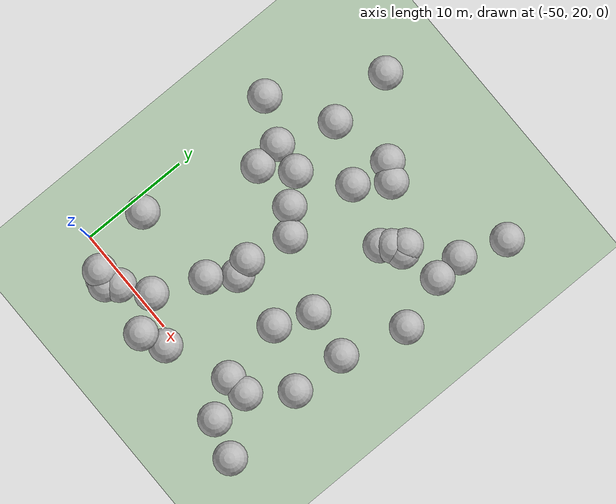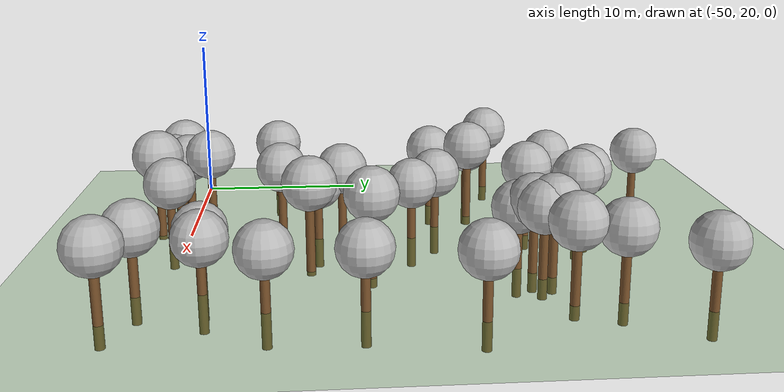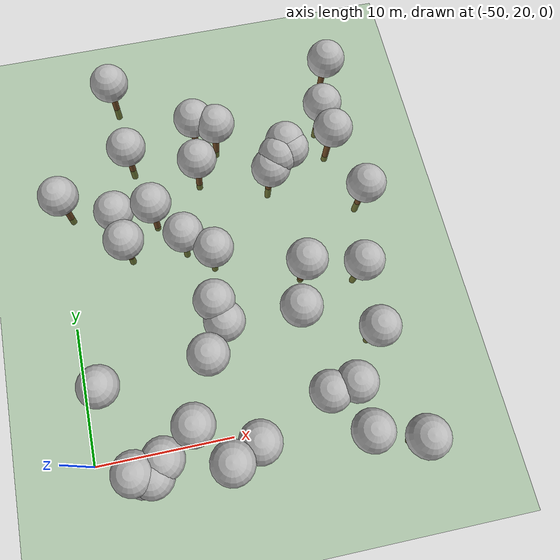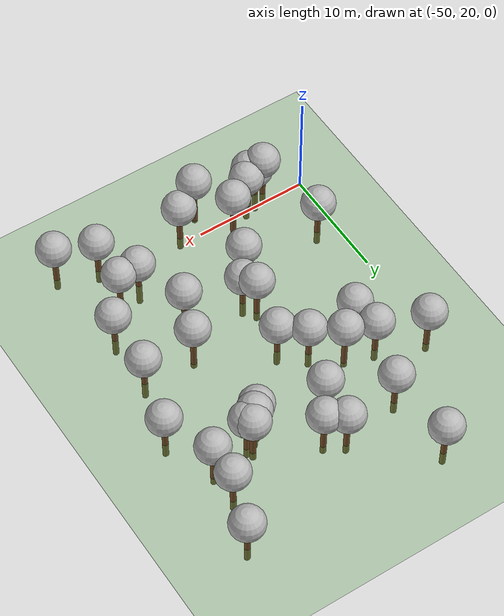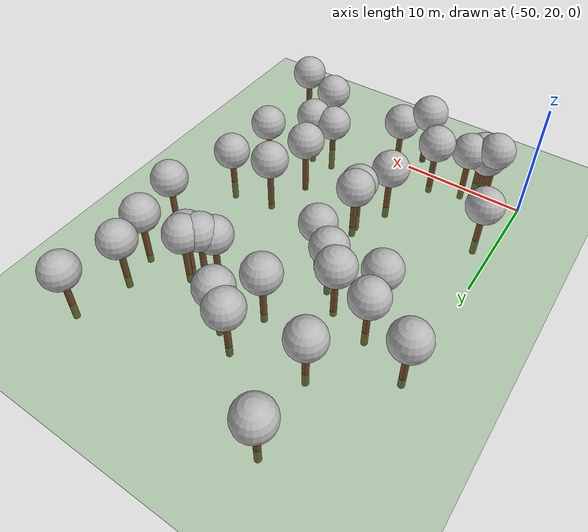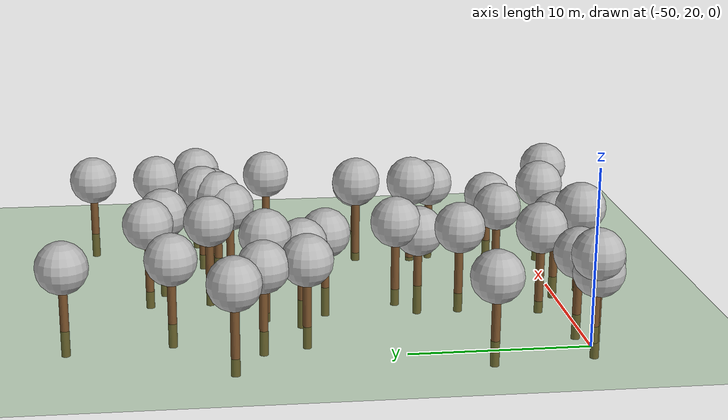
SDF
<sdf version="1.5">
 <world name="default">
  <model name="tree_simple493">
   <static>1</static>
   <link name="link">
    <pose>0 0 0.1 0 -0 0</pose>
    <collision name="collision_trunk">
     <pose>0 0 2 0 -0 0</pose>
     <geometry><cylinder><radius>0.25</radius><length>4</length></cylinder></geometry>
    </collision>
    <collision name="collision_treetop">
     <pose>0 0 5.2 0 -0 0</pose>
     <geometry><sphere><radius>1.5</radius></sphere></geometry>
    </collision>
    <visual name="trunk">
     <pose>0 0 2 0 -0 0</pose>
     <geometry><cylinder><radius>0.25</radius><length>4</length></cylinder></geometry>
     <material>
      <script>
       <uri>model://tree_simple/scripts</uri>
       <uri>model://tree_simple/materials/textures</uri>
       <name>TreeSimple/Trunk</name>
      </script>
     </material>
    </visual>
    <visual name="treetop">
     <pose>0 0 5.2 0 -0 0</pose>
     <geometry><sphere><radius>1.5</radius></sphere></geometry>
     <material>
      <script>
       <uri>model://tree_simple/scripts</uri>
       <uri>model://tree_simple/materials/textures</uri>
       <name>TreeSimple/Treetop</name>
      </script>
     </material>
    </visual>
   </link>
   <pose>-30.9686104206 18.3944298941 -1.6620912213675458 0 -0 0</pose>
  </model>
  <model name="tree_simple489">
   <static>1</static>
   <link name="link">
    <pose>0 0 0.1 0 -0 0</pose>
    <collision name="collision_trunk">
     <pose>0 0 2 0 -0 0</pose>
     <geometry><cylinder><radius>0.25</radius><length>4</length></cylinder></geometry>
    </collision>
    <collision name="collision_treetop">
     <pose>0 0 5.2 0 -0 0</pose>
     <geometry><sphere><radius>1.5</radius></sphere></geometry>
    </collision>
    <visual name="trunk">
     <pose>0 0 2 0 -0 0</pose>
     <geometry><cylinder><radius>0.25</radius><length>4</length></cylinder></geometry>
     <material>
      <script>
       <uri>model://tree_simple/scripts</uri>
       <uri>model://tree_simple/materials/textures</uri>
       <name>TreeSimple/Trunk</name>
      </script>
     </material>
    </visual>
    <visual name="treetop">
     <pose>0 0 5.2 0 -0 0</pose>
     <geometry><sphere><radius>1.5</radius></sphere></geometry>
     <material>
      <script>
       <uri>model://tree_simple/scripts</uri>
       <uri>model://tree_simple/materials/textures</uri>
       <name>TreeSimple/Treetop</name>
      </script>
     </material>
    </visual>
   </link>
   <pose>-32.6634579524 39.3278172931 -1.265425692254529 0 -0 0</pose>
  </model>
  <model name="tree_simple482">
   <static>1</static>
   <link name="link">
    <pose>0 0 0.1 0 -0 0</pose>
    <collision name="collision_trunk">
     <pose>0 0 2 0 -0 0</pose>
     <geometry><cylinder><radius>0.25</radius><length>4</length></cylinder></geometry>
    </collision>
    <collision name="collision_treetop">
     <pose>0 0 5.2 0 -0 0</pose>
     <geometry><sphere><radius>1.5</radius></sphere></geometry>
    </collision>
    <visual name="trunk">
     <pose>0 0 2 0 -0 0</pose>
     <geometry><cylinder><radius>0.25</radius><length>4</length></cylinder></geometry>
     <material>
      <script>
       <uri>model://tree_simple/scripts</uri>
       <uri>model://tree_simple/materials/textures</uri>
       <name>TreeSimple/Trunk</name>
      </script>
     </material>
    </visual>
    <visual name="treetop">
     <pose>0 0 5.2 0 -0 0</pose>
     <geometry><sphere><radius>1.5</radius></sphere></geometry>
     <material>
      <script>
       <uri>model://tree_simple/scripts</uri>
       <uri>model://tree_simple/materials/textures</uri>
       <name>TreeSimple/Treetop</name>
      </script>
     </material>
    </visual>
   </link>
   <pose>-31.7137183406 39.6850484597 -1.3092640749925835 0 -0 0</pose>
  </model>
  <model name="tree_simple476">
   <static>1</static>
   <link name="link">
    <pose>0 0 0.1 0 -0 0</pose>
    <collision name="collision_trunk">
     <pose>0 0 2 0 -0 0</pose>
     <geometry><cylinder><radius>0.25</radius><length>4</length></cylinder></geometry>
    </collision>
    <collision name="collision_treetop">
     <pose>0 0 5.2 0 -0 0</pose>
     <geometry><sphere><radius>1.5</radius></sphere></geometry>
    </collision>
    <visual name="trunk">
     <pose>0 0 2 0 -0 0</pose>
     <geometry><cylinder><radius>0.25</radius><length>4</length></cylinder></geometry>
     <material>
      <script>
       <uri>model://tree_simple/scripts</uri>
       <uri>model://tree_simple/materials/textures</uri>
       <name>TreeSimple/Trunk</name>
      </script>
     </material>
    </visual>
    <visual name="treetop">
     <pose>0 0 5.2 0 -0 0</pose>
     <geometry><sphere><radius>1.5</radius></sphere></geometry>
     <material>
      <script>
       <uri>model://tree_simple/scripts</uri>
       <uri>model://tree_simple/materials/textures</uri>
       <name>TreeSimple/Treetop</name>
      </script>
     </material>
    </visual>
   </link>
   <pose>-40.490555579 18.243153787 -0.37724001220063663 0 -0 0</pose>
  </model>
  <model name="tree_simple474">
   <static>1</static>
   <link name="link">
    <pose>0 0 0.1 0 -0 0</pose>
    <collision name="collision_trunk">
     <pose>0 0 2 0 -0 0</pose>
     <geometry><cylinder><radius>0.25</radius><length>4</length></cylinder></geometry>
    </collision>
    <collision name="collision_treetop">
     <pose>0 0 5.2 0 -0 0</pose>
     <geometry><sphere><radius>1.5</radius></sphere></geometry>
    </collision>
    <visual name="trunk">
     <pose>0 0 2 0 -0 0</pose>
     <geometry><cylinder><radius>0.25</radius><length>4</length></cylinder></geometry>
     <material>
      <script>
       <uri>model://tree_simple/scripts</uri>
       <uri>model://tree_simple/materials/textures</uri>
       <name>TreeSimple/Trunk</name>
      </script>
     </material>
    </visual>
    <visual name="treetop">
     <pose>0 0 5.2 0 -0 0</pose>
     <geometry><sphere><radius>1.5</radius></sphere></geometry>
     <material>
      <script>
       <uri>model://tree_simple/scripts</uri>
       <uri>model://tree_simple/materials/textures</uri>
       <name>TreeSimple/Treetop</name>
      </script>
     </material>
    </visual>
   </link>
   <pose>-45.5609359524 37.3889677829 -1.604523708782969 0 -0 0</pose>
  </model>
  <model name="tree_simple470">
   <static>1</static>
   <link name="link">
    <pose>0 0 0.1 0 -0 0</pose>
    <collision name="collision_trunk">
     <pose>0 0 2 0 -0 0</pose>
     <geometry><cylinder><radius>0.25</radius><length>4</length></cylinder></geometry>
    </collision>
    <collision name="collision_treetop">
     <pose>0 0 5.2 0 -0 0</pose>
     <geometry><sphere><radius>1.5</radius></sphere></geometry>
    </collision>
    <visual name="trunk">
     <pose>0 0 2 0 -0 0</pose>
     <geometry><cylinder><radius>0.25</radius><length>4</length></cylinder></geometry>
     <material>
      <script>
       <uri>model://tree_simple/scripts</uri>
       <uri>model://tree_simple/materials/textures</uri>
       <name>TreeSimple/Trunk</name>
      </script>
     </material>
    </visual>
    <visual name="treetop">
     <pose>0 0 5.2 0 -0 0</pose>
     <geometry><sphere><radius>1.5</radius></sphere></geometry>
     <material>
      <script>
       <uri>model://tree_simple/scripts</uri>
       <uri>model://tree_simple/materials/textures</uri>
       <name>TreeSimple/Treetop</name>
      </script>
     </material>
    </visual>
   </link>
   <pose>-42.5418923399 21.0598314505 -0.8731344209117238 0 -0 0</pose>
  </model>
  <model name="tree_simple467">
   <static>1</static>
   <link name="link">
    <pose>0 0 0.1 0 -0 0</pose>
    <collision name="collision_trunk">
     <pose>0 0 2 0 -0 0</pose>
     <geometry><cylinder><radius>0.25</radius><length>4</length></cylinder></geometry>
    </collision>
    <collision name="collision_treetop">
     <pose>0 0 5.2 0 -0 0</pose>
     <geometry><sphere><radius>1.5</radius></sphere></geometry>
    </collision>
    <visual name="trunk">
     <pose>0 0 2 0 -0 0</pose>
     <geometry><cylinder><radius>0.25</radius><length>4</length></cylinder></geometry>
     <material>
      <script>
       <uri>model://tree_simple/scripts</uri>
       <uri>model://tree_simple/materials/textures</uri>
       <name>TreeSimple/Trunk</name>
      </script>
     </material>
    </visual>
    <visual name="treetop">
     <pose>0 0 5.2 0 -0 0</pose>
     <geometry><sphere><radius>1.5</radius></sphere></geometry>
     <material>
      <script>
       <uri>model://tree_simple/scripts</uri>
       <uri>model://tree_simple/materials/textures</uri>
       <name>TreeSimple/Treetop</name>
      </script>
     </material>
    </visual>
   </link>
   <pose>-38.4435588212 19.1731926836 -1.5261364651120117 0 -0 0</pose>
  </model>
  <model name="tree_simple462">
   <static>1</static>
   <link name="link">
    <pose>0 0 0.1 0 -0 0</pose>
    <collision name="collision_trunk">
     <pose>0 0 2 0 -0 0</pose>
     <geometry><cylinder><radius>0.25</radius><length>4</length></cylinder></geometry>
    </collision>
    <collision name="collision_treetop">
     <pose>0 0 5.2 0 -0 0</pose>
     <geometry><sphere><radius>1.5</radius></sphere></geometry>
    </collision>
    <visual name="trunk">
     <pose>0 0 2 0 -0 0</pose>
     <geometry><cylinder><radius>0.25</radius><length>4</length></cylinder></geometry>
     <material>
      <script>
       <uri>model://tree_simple/scripts</uri>
       <uri>model://tree_simple/materials/textures</uri>
       <name>TreeSimple/Trunk</name>
      </script>
     </material>
    </visual>
    <visual name="treetop">
     <pose>0 0 5.2 0 -0 0</pose>
     <geometry><sphere><radius>1.5</radius></sphere></geometry>
     <material>
      <script>
       <uri>model://tree_simple/scripts</uri>
       <uri>model://tree_simple/materials/textures</uri>
       <name>TreeSimple/Treetop</name>
      </script>
     </material>
    </visual>
   </link>
   <pose>-33.3479265171 38.6010387018 -1.8050439179143551 0 -0 0</pose>
  </model>
  <model name="tree_simple440">
   <static>1</static>
   <link name="link">
    <pose>0 0 0.1 0 -0 0</pose>
    <collision name="collision_trunk">
     <pose>0 0 2 0 -0 0</pose>
     <geometry><cylinder><radius>0.25</radius><length>4</length></cylinder></geometry>
    </collision>
    <collision name="collision_treetop">
     <pose>0 0 5.2 0 -0 0</pose>
     <geometry><sphere><radius>1.5</radius></sphere></geometry>
    </collision>
    <visual name="trunk">
     <pose>0 0 2 0 -0 0</pose>
     <geometry><cylinder><radius>0.25</radius><length>4</length></cylinder></geometry>
     <material>
      <script>
       <uri>model://tree_simple/scripts</uri>
       <uri>model://tree_simple/materials/textures</uri>
       <name>TreeSimple/Trunk</name>
      </script>
     </material>
    </visual>
    <visual name="treetop">
     <pose>0 0 5.2 0 -0 0</pose>
     <geometry><sphere><radius>1.5</radius></sphere></geometry>
     <material>
      <script>
       <uri>model://tree_simple/scripts</uri>
       <uri>model://tree_simple/materials/textures</uri>
       <name>TreeSimple/Treetop</name>
      </script>
     </material>
    </visual>
   </link>
   <pose>-31.0139863597 21.7755311208 -2.3202333116660094 0 -0 0</pose>
  </model>
  <model name="tree_simple420">
   <static>1</static>
   <link name="link">
    <pose>0 0 0.1 0 -0 0</pose>
    <collision name="collision_trunk">
     <pose>0 0 2 0 -0 0</pose>
     <geometry><cylinder><radius>0.25</radius><length>4</length></cylinder></geometry>
    </collision>
    <collision name="collision_treetop">
     <pose>0 0 5.2 0 -0 0</pose>
     <geometry><sphere><radius>1.5</radius></sphere></geometry>
    </collision>
    <visual name="trunk">
     <pose>0 0 2 0 -0 0</pose>
     <geometry><cylinder><radius>0.25</radius><length>4</length></cylinder></geometry>
     <material>
      <script>
       <uri>model://tree_simple/scripts</uri>
       <uri>model://tree_simple/materials/textures</uri>
       <name>TreeSimple/Trunk</name>
      </script>
     </material>
    </visual>
    <visual name="treetop">
     <pose>0 0 5.2 0 -0 0</pose>
     <geometry><sphere><radius>1.5</radius></sphere></geometry>
     <material>
      <script>
       <uri>model://tree_simple/scripts</uri>
       <uri>model://tree_simple/materials/textures</uri>
       <name>TreeSimple/Treetop</name>
      </script>
     </material>
    </visual>
   </link>
   <pose>-46.8738530937 18.9140158148 -1.128970140510376 0 -0 0</pose>
  </model>
  <model name="tree_simple410">
   <static>1</static>
   <link name="link">
    <pose>0 0 0.1 0 -0 0</pose>
    <collision name="collision_trunk">
     <pose>0 0 2 0 -0 0</pose>
     <geometry><cylinder><radius>0.25</radius><length>4</length></cylinder></geometry>
    </collision>
    <collision name="collision_treetop">
     <pose>0 0 5.2 0 -0 0</pose>
     <geometry><sphere><radius>1.5</radius></sphere></geometry>
    </collision>
    <visual name="trunk">
     <pose>0 0 2 0 -0 0</pose>
     <geometry><cylinder><radius>0.25</radius><length>4</length></cylinder></geometry>
     <material>
      <script>
       <uri>model://tree_simple/scripts</uri>
       <uri>model://tree_simple/materials/textures</uri>
       <name>TreeSimple/Trunk</name>
      </script>
     </material>
    </visual>
    <visual name="treetop">
     <pose>0 0 5.2 0 -0 0</pose>
     <geometry><sphere><radius>1.5</radius></sphere></geometry>
     <material>
      <script>
       <uri>model://tree_simple/scripts</uri>
       <uri>model://tree_simple/materials/textures</uri>
       <name>TreeSimple/Treetop</name>
      </script>
     </material>
    </visual>
   </link>
   <pose>-31.9347087499 40.2537422087 -1.086412301208173 0 -0 0</pose>
  </model>
  <model name="tree_simple358">
   <static>1</static>
   <link name="link">
    <pose>0 0 0.1 0 -0 0</pose>
    <collision name="collision_trunk">
     <pose>0 0 2 0 -0 0</pose>
     <geometry><cylinder><radius>0.25</radius><length>4</length></cylinder></geometry>
    </collision>
    <collision name="collision_treetop">
     <pose>0 0 5.2 0 -0 0</pose>
     <geometry><sphere><radius>1.5</radius></sphere></geometry>
    </collision>
    <visual name="trunk">
     <pose>0 0 2 0 -0 0</pose>
     <geometry><cylinder><radius>0.25</radius><length>4</length></cylinder></geometry>
     <material>
      <script>
       <uri>model://tree_simple/scripts</uri>
       <uri>model://tree_simple/materials/textures</uri>
       <name>TreeSimple/Trunk</name>
      </script>
     </material>
    </visual>
    <visual name="treetop">
     <pose>0 0 5.2 0 -0 0</pose>
     <geometry><sphere><radius>1.5</radius></sphere></geometry>
     <material>
      <script>
       <uri>model://tree_simple/scripts</uri>
       <uri>model://tree_simple/materials/textures</uri>
       <name>TreeSimple/Treetop</name>
      </script>
     </material>
    </visual>
   </link>
   <pose>-28.1059387966 40.529489556 -0.9327559636469541 0 -0 0</pose>
  </model>
  <model name="tree_simple351">
   <static>1</static>
   <link name="link">
    <pose>0 0 0.1 0 -0 0</pose>
    <collision name="collision_trunk">
     <pose>0 0 2 0 -0 0</pose>
     <geometry><cylinder><radius>0.25</radius><length>4</length></cylinder></geometry>
    </collision>
    <collision name="collision_treetop">
     <pose>0 0 5.2 0 -0 0</pose>
     <geometry><sphere><radius>1.5</radius></sphere></geometry>
    </collision>
    <visual name="trunk">
     <pose>0 0 2 0 -0 0</pose>
     <geometry><cylinder><radius>0.25</radius><length>4</length></cylinder></geometry>
     <material>
      <script>
       <uri>model://tree_simple/scripts</uri>
       <uri>model://tree_simple/materials/textures</uri>
       <name>TreeSimple/Trunk</name>
      </script>
     </material>
    </visual>
    <visual name="treetop">
     <pose>0 0 5.2 0 -0 0</pose>
     <geometry><sphere><radius>1.5</radius></sphere></geometry>
     <material>
      <script>
       <uri>model://tree_simple/scripts</uri>
       <uri>model://tree_simple/materials/textures</uri>
       <name>TreeSimple/Treetop</name>
      </script>
     </material>
    </visual>
   </link>
   <pose>-28.4628783032 25.1782097003 -2.0857046468527254 0 -0 0</pose>
  </model>
  <model name="tree_simple336">
   <static>1</static>
   <link name="link">
    <pose>0 0 0.1 0 -0 0</pose>
    <collision name="collision_trunk">
     <pose>0 0 2 0 -0 0</pose>
     <geometry><cylinder><radius>0.25</radius><length>4</length></cylinder></geometry>
    </collision>
    <collision name="collision_treetop">
     <pose>0 0 5.2 0 -0 0</pose>
     <geometry><sphere><radius>1.5</radius></sphere></geometry>
    </collision>
    <visual name="trunk">
     <pose>0 0 2 0 -0 0</pose>
     <geometry><cylinder><radius>0.25</radius><length>4</length></cylinder></geometry>
     <material>
      <script>
       <uri>model://tree_simple/scripts</uri>
       <uri>model://tree_simple/materials/textures</uri>
       <name>TreeSimple/Trunk</name>
      </script>
     </material>
    </visual>
    <visual name="treetop">
     <pose>0 0 5.2 0 -0 0</pose>
     <geometry><sphere><radius>1.5</radius></sphere></geometry>
     <material>
      <script>
       <uri>model://tree_simple/scripts</uri>
       <uri>model://tree_simple/materials/textures</uri>
       <name>TreeSimple/Treetop</name>
      </script>
     </material>
    </visual>
   </link>
   <pose>-43.9020074738 42.4187815875 -1.566816029091475 0 -0 0</pose>
  </model>
  <model name="tree_simple331">
   <static>1</static>
   <link name="link">
    <pose>0 0 0.1 0 -0 0</pose>
    <collision name="collision_trunk">
     <pose>0 0 2 0 -0 0</pose>
     <geometry><cylinder><radius>0.25</radius><length>4</length></cylinder></geometry>
    </collision>
    <collision name="collision_treetop">
     <pose>0 0 5.2 0 -0 0</pose>
     <geometry><sphere><radius>1.5</radius></sphere></geometry>
    </collision>
    <visual name="trunk">
     <pose>0 0 2 0 -0 0</pose>
     <geometry><cylinder><radius>0.25</radius><length>4</length></cylinder></geometry>
     <material>
      <script>
       <uri>model://tree_simple/scripts</uri>
       <uri>model://tree_simple/materials/textures</uri>
       <name>TreeSimple/Trunk</name>
      </script>
     </material>
    </visual>
    <visual name="treetop">
     <pose>0 0 5.2 0 -0 0</pose>
     <geometry><sphere><radius>1.5</radius></sphere></geometry>
     <material>
      <script>
       <uri>model://tree_simple/scripts</uri>
       <uri>model://tree_simple/materials/textures</uri>
       <name>TreeSimple/Treetop</name>
      </script>
     </material>
    </visual>
   </link>
   <pose>-40.8341940448 34.8238319948 -1.8990894207489322 0 -0 0</pose>
  </model>
  <model name="tree_simple319">
   <static>1</static>
   <link name="link">
    <pose>0 0 0.1 0 -0 0</pose>
    <collision name="collision_trunk">
     <pose>0 0 2 0 -0 0</pose>
     <geometry><cylinder><radius>0.25</radius><length>4</length></cylinder></geometry>
    </collision>
    <collision name="collision_treetop">
     <pose>0 0 5.2 0 -0 0</pose>
     <geometry><sphere><radius>1.5</radius></sphere></geometry>
    </collision>
    <visual name="trunk">
     <pose>0 0 2 0 -0 0</pose>
     <geometry><cylinder><radius>0.25</radius><length>4</length></cylinder></geometry>
     <material>
      <script>
       <uri>model://tree_simple/scripts</uri>
       <uri>model://tree_simple/materials/textures</uri>
       <name>TreeSimple/Trunk</name>
      </script>
     </material>
    </visual>
    <visual name="treetop">
     <pose>0 0 5.2 0 -0 0</pose>
     <geometry><sphere><radius>1.5</radius></sphere></geometry>
     <material>
      <script>
       <uri>model://tree_simple/scripts</uri>
       <uri>model://tree_simple/materials/textures</uri>
       <name>TreeSimple/Treetop</name>
      </script>
     </material>
    </visual>
   </link>
   <pose>-33.8227496689 27.309967617 -0.37272230413474916 0 -0 0</pose>
  </model>
  <model name="tree_simple311">
   <static>1</static>
   <link name="link">
    <pose>0 0 0.1 0 -0 0</pose>
    <collision name="collision_trunk">
     <pose>0 0 2 0 -0 0</pose>
     <geometry><cylinder><radius>0.25</radius><length>4</length></cylinder></geometry>
    </collision>
    <collision name="collision_treetop">
     <pose>0 0 5.2 0 -0 0</pose>
     <geometry><sphere><radius>1.5</radius></sphere></geometry>
    </collision>
    <visual name="trunk">
     <pose>0 0 2 0 -0 0</pose>
     <geometry><cylinder><radius>0.25</radius><length>4</length></cylinder></geometry>
     <material>
      <script>
       <uri>model://tree_simple/scripts</uri>
       <uri>model://tree_simple/materials/textures</uri>
       <name>TreeSimple/Trunk</name>
      </script>
     </material>
    </visual>
    <visual name="treetop">
     <pose>0 0 5.2 0 -0 0</pose>
     <geometry><sphere><radius>1.5</radius></sphere></geometry>
     <material>
      <script>
       <uri>model://tree_simple/scripts</uri>
       <uri>model://tree_simple/materials/textures</uri>
       <name>TreeSimple/Treetop</name>
      </script>
     </material>
    </visual>
   </link>
   <pose>-49.3857645653 39.1709388153 -1.149713626310949 0 -0 0</pose>
  </model>
  <model name="tree_simple291">
   <static>1</static>
   <link name="link">
    <pose>0 0 0.1 0 -0 0</pose>
    <collision name="collision_trunk">
     <pose>0 0 2 0 -0 0</pose>
     <geometry><cylinder><radius>0.25</radius><length>4</length></cylinder></geometry>
    </collision>
    <collision name="collision_treetop">
     <pose>0 0 5.2 0 -0 0</pose>
     <geometry><sphere><radius>1.5</radius></sphere></geometry>
    </collision>
    <visual name="trunk">
     <pose>0 0 2 0 -0 0</pose>
     <geometry><cylinder><radius>0.25</radius><length>4</length></cylinder></geometry>
     <material>
      <script>
       <uri>model://tree_simple/scripts</uri>
       <uri>model://tree_simple/materials/textures</uri>
       <name>TreeSimple/Trunk</name>
      </script>
     </material>
    </visual>
    <visual name="treetop">
     <pose>0 0 5.2 0 -0 0</pose>
     <geometry><sphere><radius>1.5</radius></sphere></geometry>
     <material>
      <script>
       <uri>model://tree_simple/scripts</uri>
       <uri>model://tree_simple/materials/textures</uri>
       <name>TreeSimple/Treetop</name>
      </script>
     </material>
    </visual>
   </link>
   <pose>-38.780558868 40.0860126223 -1.028956483544355 0 -0 0</pose>
  </model>
  <model name="tree_simple286">
   <static>1</static>
   <link name="link">
    <pose>0 0 0.1 0 -0 0</pose>
    <collision name="collision_trunk">
     <pose>0 0 2 0 -0 0</pose>
     <geometry><cylinder><radius>0.25</radius><length>4</length></cylinder></geometry>
    </collision>
    <collision name="collision_treetop">
     <pose>0 0 5.2 0 -0 0</pose>
     <geometry><sphere><radius>1.5</radius></sphere></geometry>
    </collision>
    <visual name="trunk">
     <pose>0 0 2 0 -0 0</pose>
     <geometry><cylinder><radius>0.25</radius><length>4</length></cylinder></geometry>
     <material>
      <script>
       <uri>model://tree_simple/scripts</uri>
       <uri>model://tree_simple/materials/textures</uri>
       <name>TreeSimple/Trunk</name>
      </script>
     </material>
    </visual>
    <visual name="treetop">
     <pose>0 0 5.2 0 -0 0</pose>
     <geometry><sphere><radius>1.5</radius></sphere></geometry>
     <material>
      <script>
       <uri>model://tree_simple/scripts</uri>
       <uri>model://tree_simple/materials/textures</uri>
       <name>TreeSimple/Treetop</name>
      </script>
     </material>
    </visual>
   </link>
   <pose>-48.4343960976 24.9011596552 -1.631654732204275 0 -0 0</pose>
  </model>
  <model name="tree_simple264">
   <static>1</static>
   <link name="link">
    <pose>0 0 0.1 0 -0 0</pose>
    <collision name="collision_trunk">
     <pose>0 0 2 0 -0 0</pose>
     <geometry><cylinder><radius>0.25</radius><length>4</length></cylinder></geometry>
    </collision>
    <collision name="collision_treetop">
     <pose>0 0 5.2 0 -0 0</pose>
     <geometry><sphere><radius>1.5</radius></sphere></geometry>
    </collision>
    <visual name="trunk">
     <pose>0 0 2 0 -0 0</pose>
     <geometry><cylinder><radius>0.25</radius><length>4</length></cylinder></geometry>
     <material>
      <script>
       <uri>model://tree_simple/scripts</uri>
       <uri>model://tree_simple/materials/textures</uri>
       <name>TreeSimple/Trunk</name>
      </script>
     </material>
    </visual>
    <visual name="treetop">
     <pose>0 0 5.2 0 -0 0</pose>
     <geometry><sphere><radius>1.5</radius></sphere></geometry>
     <material>
      <script>
       <uri>model://tree_simple/scripts</uri>
       <uri>model://tree_simple/materials/textures</uri>
       <name>TreeSimple/Treetop</name>
      </script>
     </material>
    </visual>
   </link>
   <pose>-26.5960769864 35.8751081016 -1.7159737545884064 0 -0 0</pose>
  </model>
  <model name="tree_simple256">
   <static>1</static>
   <link name="link">
    <pose>0 0 0.1 0 -0 0</pose>
    <collision name="collision_trunk">
     <pose>0 0 2 0 -0 0</pose>
     <geometry><cylinder><radius>0.25</radius><length>4</length></cylinder></geometry>
    </collision>
    <collision name="collision_treetop">
     <pose>0 0 5.2 0 -0 0</pose>
     <geometry><sphere><radius>1.5</radius></sphere></geometry>
    </collision>
    <visual name="trunk">
     <pose>0 0 2 0 -0 0</pose>
     <geometry><cylinder><radius>0.25</radius><length>4</length></cylinder></geometry>
     <material>
      <script>
       <uri>model://tree_simple/scripts</uri>
       <uri>model://tree_simple/materials/textures</uri>
       <name>TreeSimple/Trunk</name>
      </script>
     </material>
    </visual>
    <visual name="treetop">
     <pose>0 0 5.2 0 -0 0</pose>
     <geometry><sphere><radius>1.5</radius></sphere></geometry>
     <material>
      <script>
       <uri>model://tree_simple/scripts</uri>
       <uri>model://tree_simple/materials/textures</uri>
       <name>TreeSimple/Treetop</name>
      </script>
     </material>
    </visual>
   </link>
   <pose>-38.4325558623 43.6568851864 -1.1900051898746096 0 -0 0</pose>
  </model>
  <model name="tree_simple247">
   <static>1</static>
   <link name="link">
    <pose>0 0 0.1 0 -0 0</pose>
    <collision name="collision_trunk">
     <pose>0 0 2 0 -0 0</pose>
     <geometry><cylinder><radius>0.25</radius><length>4</length></cylinder></geometry>
    </collision>
    <collision name="collision_treetop">
     <pose>0 0 5.2 0 -0 0</pose>
     <geometry><sphere><radius>1.5</radius></sphere></geometry>
    </collision>
    <visual name="trunk">
     <pose>0 0 2 0 -0 0</pose>
     <geometry><cylinder><radius>0.25</radius><length>4</length></cylinder></geometry>
     <material>
      <script>
       <uri>model://tree_simple/scripts</uri>
       <uri>model://tree_simple/materials/textures</uri>
       <name>TreeSimple/Trunk</name>
      </script>
     </material>
    </visual>
    <visual name="treetop">
     <pose>0 0 5.2 0 -0 0</pose>
     <geometry><sphere><radius>1.5</radius></sphere></geometry>
     <material>
      <script>
       <uri>model://tree_simple/scripts</uri>
       <uri>model://tree_simple/materials/textures</uri>
       <name>TreeSimple/Treetop</name>
      </script>
     </material>
    </visual>
   </link>
   <pose>-44.3832388131 48.3955182604 -1.6566831114187748 0 -0 0</pose>
  </model>
  <model name="tree_simple236">
   <static>1</static>
   <link name="link">
    <pose>0 0 0.1 0 -0 0</pose>
    <collision name="collision_trunk">
     <pose>0 0 2 0 -0 0</pose>
     <geometry><cylinder><radius>0.25</radius><length>4</length></cylinder></geometry>
    </collision>
    <collision name="collision_treetop">
     <pose>0 0 5.2 0 -0 0</pose>
     <geometry><sphere><radius>1.5</radius></sphere></geometry>
    </collision>
    <visual name="trunk">
     <pose>0 0 2 0 -0 0</pose>
     <geometry><cylinder><radius>0.25</radius><length>4</length></cylinder></geometry>
     <material>
      <script>
       <uri>model://tree_simple/scripts</uri>
       <uri>model://tree_simple/materials/textures</uri>
       <name>TreeSimple/Trunk</name>
      </script>
     </material>
    </visual>
    <visual name="treetop">
     <pose>0 0 5.2 0 -0 0</pose>
     <geometry><sphere><radius>1.5</radius></sphere></geometry>
     <material>
      <script>
       <uri>model://tree_simple/scripts</uri>
       <uri>model://tree_simple/materials/textures</uri>
       <name>TreeSimple/Treetop</name>
      </script>
     </material>
    </visual>
   </link>
   <pose>-28.2556560036 43.088579588 -1.3613872673199896 0 -0 0</pose>
  </model>
  <model name="tree_simple208">
   <static>1</static>
   <link name="link">
    <pose>0 0 0.1 0 -0 0</pose>
    <collision name="collision_trunk">
     <pose>0 0 2 0 -0 0</pose>
     <geometry><cylinder><radius>0.25</radius><length>4</length></cylinder></geometry>
    </collision>
    <collision name="collision_treetop">
     <pose>0 0 5.2 0 -0 0</pose>
     <geometry><sphere><radius>1.5</radius></sphere></geometry>
    </collision>
    <visual name="trunk">
     <pose>0 0 2 0 -0 0</pose>
     <geometry><cylinder><radius>0.25</radius><length>4</length></cylinder></geometry>
     <material>
      <script>
       <uri>model://tree_simple/scripts</uri>
       <uri>model://tree_simple/materials/textures</uri>
       <name>TreeSimple/Trunk</name>
      </script>
     </material>
    </visual>
    <visual name="treetop">
     <pose>0 0 5.2 0 -0 0</pose>
     <geometry><sphere><radius>1.5</radius></sphere></geometry>
     <material>
      <script>
       <uri>model://tree_simple/scripts</uri>
       <uri>model://tree_simple/materials/textures</uri>
       <name>TreeSimple/Treetop</name>
      </script>
     </material>
    </visual>
   </link>
   <pose>-39.1560557195 27.6775865092 -1.9282390185703067 0 -0 0</pose>
  </model>
  <model name="tree_simple205">
   <static>1</static>
   <link name="link">
    <pose>0 0 0.1 0 -0 0</pose>
    <collision name="collision_trunk">
     <pose>0 0 2 0 -0 0</pose>
     <geometry><cylinder><radius>0.25</radius><length>4</length></cylinder></geometry>
    </collision>
    <collision name="collision_treetop">
     <pose>0 0 5.2 0 -0 0</pose>
     <geometry><sphere><radius>1.5</radius></sphere></geometry>
    </collision>
    <visual name="trunk">
     <pose>0 0 2 0 -0 0</pose>
     <geometry><cylinder><radius>0.25</radius><length>4</length></cylinder></geometry>
     <material>
      <script>
       <uri>model://tree_simple/scripts</uri>
       <uri>model://tree_simple/materials/textures</uri>
       <name>TreeSimple/Trunk</name>
      </script>
     </material>
    </visual>
    <visual name="treetop">
     <pose>0 0 5.2 0 -0 0</pose>
     <geometry><sphere><radius>1.5</radius></sphere></geometry>
     <material>
      <script>
       <uri>model://tree_simple/scripts</uri>
       <uri>model://tree_simple/materials/textures</uri>
       <name>TreeSimple/Treetop</name>
      </script>
     </material>
    </visual>
   </link>
   <pose>-28.261168219 30.0880019851 -2.069801193015785 0 -0 0</pose>
  </model>
  <model name="tree_simple132">
   <static>1</static>
   <link name="link">
    <pose>0 0 0.1 0 -0 0</pose>
    <collision name="collision_trunk">
     <pose>0 0 2 0 -0 0</pose>
     <geometry><cylinder><radius>0.25</radius><length>4</length></cylinder></geometry>
    </collision>
    <collision name="collision_treetop">
     <pose>0 0 5.2 0 -0 0</pose>
     <geometry><sphere><radius>1.5</radius></sphere></geometry>
    </collision>
    <visual name="trunk">
     <pose>0 0 2 0 -0 0</pose>
     <geometry><cylinder><radius>0.25</radius><length>4</length></cylinder></geometry>
     <material>
      <script>
       <uri>model://tree_simple/scripts</uri>
       <uri>model://tree_simple/materials/textures</uri>
       <name>TreeSimple/Trunk</name>
      </script>
     </material>
    </visual>
    <visual name="treetop">
     <pose>0 0 5.2 0 -0 0</pose>
     <geometry><sphere><radius>1.5</radius></sphere></geometry>
     <material>
      <script>
       <uri>model://tree_simple/scripts</uri>
       <uri>model://tree_simple/materials/textures</uri>
       <name>TreeSimple/Treetop</name>
      </script>
     </material>
    </visual>
   </link>
   <pose>-26.8565746681 47.2141464963 -1.6994106831331166 0 -0 0</pose>
  </model>
  <model name="tree_simple127">
   <static>1</static>
   <link name="link">
    <pose>0 0 0.1 0 -0 0</pose>
    <collision name="collision_trunk">
     <pose>0 0 2 0 -0 0</pose>
     <geometry><cylinder><radius>0.25</radius><length>4</length></cylinder></geometry>
    </collision>
    <collision name="collision_treetop">
     <pose>0 0 5.2 0 -0 0</pose>
     <geometry><sphere><radius>1.5</radius></sphere></geometry>
    </collision>
    <visual name="trunk">
     <pose>0 0 2 0 -0 0</pose>
     <geometry><cylinder><radius>0.25</radius><length>4</length></cylinder></geometry>
     <material>
      <script>
       <uri>model://tree_simple/scripts</uri>
       <uri>model://tree_simple/materials/textures</uri>
       <name>TreeSimple/Trunk</name>
      </script>
     </material>
    </visual>
    <visual name="treetop">
     <pose>0 0 5.2 0 -0 0</pose>
     <geometry><sphere><radius>1.5</radius></sphere></geometry>
     <material>
      <script>
       <uri>model://tree_simple/scripts</uri>
       <uri>model://tree_simple/materials/textures</uri>
       <name>TreeSimple/Treetop</name>
      </script>
     </material>
    </visual>
   </link>
   <pose>-45.7202624904 18.511982554 -1.7945295116874265 0 -0 0</pose>
  </model>
  <model name="tree_simple122">
   <static>1</static>
   <link name="link">
    <pose>0 0 0.1 0 -0 0</pose>
    <collision name="collision_trunk">
     <pose>0 0 2 0 -0 0</pose>
     <geometry><cylinder><radius>0.25</radius><length>4</length></cylinder></geometry>
    </collision>
    <collision name="collision_treetop">
     <pose>0 0 5.2 0 -0 0</pose>
     <geometry><sphere><radius>1.5</radius></sphere></geometry>
    </collision>
    <visual name="trunk">
     <pose>0 0 2 0 -0 0</pose>
     <geometry><cylinder><radius>0.25</radius><length>4</length></cylinder></geometry>
     <material>
      <script>
       <uri>model://tree_simple/scripts</uri>
       <uri>model://tree_simple/materials/textures</uri>
       <name>TreeSimple/Trunk</name>
      </script>
     </material>
    </visual>
    <visual name="treetop">
     <pose>0 0 5.2 0 -0 0</pose>
     <geometry><sphere><radius>1.5</radius></sphere></geometry>
     <material>
      <script>
       <uri>model://tree_simple/scripts</uri>
       <uri>model://tree_simple/materials/textures</uri>
       <name>TreeSimple/Treetop</name>
      </script>
     </material>
    </visual>
   </link>
   <pose>-44.9070413792 19.4157710588 -1.671734693112101 0 -0 0</pose>
  </model>
  <model name="tree_simple119">
   <static>1</static>
   <link name="link">
    <pose>0 0 0.1 0 -0 0</pose>
    <collision name="collision_trunk">
     <pose>0 0 2 0 -0 0</pose>
     <geometry><cylinder><radius>0.25</radius><length>4</length></cylinder></geometry>
    </collision>
    <collision name="collision_treetop">
     <pose>0 0 5.2 0 -0 0</pose>
     <geometry><sphere><radius>1.5</radius></sphere></geometry>
    </collision>
    <visual name="trunk">
     <pose>0 0 2 0 -0 0</pose>
     <geometry><cylinder><radius>0.25</radius><length>4</length></cylinder></geometry>
     <material>
      <script>
       <uri>model://tree_simple/scripts</uri>
       <uri>model://tree_simple/materials/textures</uri>
       <name>TreeSimple/Trunk</name>
      </script>
     </material>
    </visual>
    <visual name="treetop">
     <pose>0 0 5.2 0 -0 0</pose>
     <geometry><sphere><radius>1.5</radius></sphere></geometry>
     <material>
      <script>
       <uri>model://tree_simple/scripts</uri>
       <uri>model://tree_simple/materials/textures</uri>
       <name>TreeSimple/Treetop</name>
      </script>
     </material>
    </visual>
   </link>
   <pose>-27.5998375986 17.3076325805 -1.3872473638881269 0 -0 0</pose>
  </model>
  <model name="tree_simple117">
   <static>1</static>
   <link name="link">
    <pose>0 0 0.1 0 -0 0</pose>
    <collision name="collision_trunk">
     <pose>0 0 2 0 -0 0</pose>
     <geometry><cylinder><radius>0.25</radius><length>4</length></cylinder></geometry>
    </collision>
    <collision name="collision_treetop">
     <pose>0 0 5.2 0 -0 0</pose>
     <geometry><sphere><radius>1.5</radius></sphere></geometry>
    </collision>
    <visual name="trunk">
     <pose>0 0 2 0 -0 0</pose>
     <geometry><cylinder><radius>0.25</radius><length>4</length></cylinder></geometry>
     <material>
      <script>
       <uri>model://tree_simple/scripts</uri>
       <uri>model://tree_simple/materials/textures</uri>
       <name>TreeSimple/Trunk</name>
      </script>
     </material>
    </visual>
    <visual name="treetop">
     <pose>0 0 5.2 0 -0 0</pose>
     <geometry><sphere><radius>1.5</radius></sphere></geometry>
     <material>
      <script>
       <uri>model://tree_simple/scripts</uri>
       <uri>model://tree_simple/materials/textures</uri>
       <name>TreeSimple/Treetop</name>
      </script>
     </material>
    </visual>
   </link>
   <pose>-46.2827238601 18.6501285005 -2.323883707920918 0 -0 0</pose>
  </model>
  <model name="tree_simple112">
   <static>1</static>
   <link name="link">
    <pose>0 0 0.1 0 -0 0</pose>
    <collision name="collision_trunk">
     <pose>0 0 2 0 -0 0</pose>
     <geometry><cylinder><radius>0.25</radius><length>4</length></cylinder></geometry>
    </collision>
    <collision name="collision_treetop">
     <pose>0 0 5.2 0 -0 0</pose>
     <geometry><sphere><radius>1.5</radius></sphere></geometry>
    </collision>
    <visual name="trunk">
     <pose>0 0 2 0 -0 0</pose>
     <geometry><cylinder><radius>0.25</radius><length>4</length></cylinder></geometry>
     <material>
      <script>
       <uri>model://tree_simple/scripts</uri>
       <uri>model://tree_simple/materials/textures</uri>
       <name>TreeSimple/Trunk</name>
      </script>
     </material>
    </visual>
    <visual name="treetop">
     <pose>0 0 5.2 0 -0 0</pose>
     <geometry><sphere><radius>1.5</radius></sphere></geometry>
     <material>
      <script>
       <uri>model://tree_simple/scripts</uri>
       <uri>model://tree_simple/materials/textures</uri>
       <name>TreeSimple/Treetop</name>
      </script>
     </material>
    </visual>
   </link>
   <pose>-36.862810057 42.7576459823 -1.0454744245922125 0 -0 0</pose>
  </model>
  <model name="tree_simple109">
   <static>1</static>
   <link name="link">
    <pose>0 0 0.1 0 -0 0</pose>
    <collision name="collision_trunk">
     <pose>0 0 2 0 -0 0</pose>
     <geometry><cylinder><radius>0.25</radius><length>4</length></cylinder></geometry>
    </collision>
    <collision name="collision_treetop">
     <pose>0 0 5.2 0 -0 0</pose>
     <geometry><sphere><radius>1.5</radius></sphere></geometry>
    </collision>
    <visual name="trunk">
     <pose>0 0 2 0 -0 0</pose>
     <geometry><cylinder><radius>0.25</radius><length>4</length></cylinder></geometry>
     <material>
      <script>
       <uri>model://tree_simple/scripts</uri>
       <uri>model://tree_simple/materials/textures</uri>
       <name>TreeSimple/Trunk</name>
      </script>
     </material>
    </visual>
    <visual name="treetop">
     <pose>0 0 5.2 0 -0 0</pose>
     <geometry><sphere><radius>1.5</radius></sphere></geometry>
     <material>
      <script>
       <uri>model://tree_simple/scripts</uri>
       <uri>model://tree_simple/materials/textures</uri>
       <name>TreeSimple/Treetop</name>
      </script>
     </material>
    </visual>
   </link>
   <pose>-42.7379400786 37.0728302321 -0.6806331983806716 0 -0 0</pose>
  </model>
  <model name="tree_simple53">
   <static>1</static>
   <link name="link">
    <pose>0 0 0.1 0 -0 0</pose>
    <collision name="collision_trunk">
     <pose>0 0 2 0 -0 0</pose>
     <geometry><cylinder><radius>0.25</radius><length>4</length></cylinder></geometry>
    </collision>
    <collision name="collision_treetop">
     <pose>0 0 5.2 0 -0 0</pose>
     <geometry><sphere><radius>1.5</radius></sphere></geometry>
    </collision>
    <visual name="trunk">
     <pose>0 0 2 0 -0 0</pose>
     <geometry><cylinder><radius>0.25</radius><length>4</length></cylinder></geometry>
     <material>
      <script>
       <uri>model://tree_simple/scripts</uri>
       <uri>model://tree_simple/materials/textures</uri>
       <name>TreeSimple/Trunk</name>
      </script>
     </material>
    </visual>
    <visual name="treetop">
     <pose>0 0 5.2 0 -0 0</pose>
     <geometry><sphere><radius>1.5</radius></sphere></geometry>
     <material>
      <script>
       <uri>model://tree_simple/scripts</uri>
       <uri>model://tree_simple/materials/textures</uri>
       <name>TreeSimple/Treetop</name>
      </script>
     </material>
    </visual>
   </link>
   <pose>-38.8612108818 33.2267374622 -1.9498551275424134 0 -0 0</pose>
  </model>
  <model name="tree_simple43">
   <static>1</static>
   <link name="link">
    <pose>0 0 0.1 0 -0 0</pose>
    <collision name="collision_trunk">
     <pose>0 0 2 0 -0 0</pose>
     <geometry><cylinder><radius>0.25</radius><length>4</length></cylinder></geometry>
    </collision>
    <collision name="collision_treetop">
     <pose>0 0 5.2 0 -0 0</pose>
     <geometry><sphere><radius>1.5</radius></sphere></geometry>
    </collision>
    <visual name="trunk">
     <pose>0 0 2 0 -0 0</pose>
     <geometry><cylinder><radius>0.25</radius><length>4</length></cylinder></geometry>
     <material>
      <script>
       <uri>model://tree_simple/scripts</uri>
       <uri>model://tree_simple/materials/textures</uri>
       <name>TreeSimple/Trunk</name>
      </script>
     </material>
    </visual>
    <visual name="treetop">
     <pose>0 0 5.2 0 -0 0</pose>
     <geometry><sphere><radius>1.5</radius></sphere></geometry>
     <material>
      <script>
       <uri>model://tree_simple/scripts</uri>
       <uri>model://tree_simple/materials/textures</uri>
       <name>TreeSimple/Treetop</name>
      </script>
     </material>
    </visual>
   </link>
   <pose>-32.9489924766 21.5371657104 -2.5 0 -0 0</pose>
  </model>
  <model name="tree_simple36">
   <static>1</static>
   <link name="link">
    <pose>0 0 0.1 0 -0 0</pose>
    <collision name="collision_trunk">
     <pose>0 0 2 0 -0 0</pose>
     <geometry><cylinder><radius>0.25</radius><length>4</length></cylinder></geometry>
    </collision>
    <collision name="collision_treetop">
     <pose>0 0 5.2 0 -0 0</pose>
     <geometry><sphere><radius>1.5</radius></sphere></geometry>
    </collision>
    <visual name="trunk">
     <pose>0 0 2 0 -0 0</pose>
     <geometry><cylinder><radius>0.25</radius><length>4</length></cylinder></geometry>
     <material>
      <script>
       <uri>model://tree_simple/scripts</uri>
       <uri>model://tree_simple/materials/textures</uri>
       <name>TreeSimple/Trunk</name>
      </script>
     </material>
    </visual>
    <visual name="treetop">
     <pose>0 0 5.2 0 -0 0</pose>
     <geometry><sphere><radius>1.5</radius></sphere></geometry>
     <material>
      <script>
       <uri>model://tree_simple/scripts</uri>
       <uri>model://tree_simple/materials/textures</uri>
       <name>TreeSimple/Treetop</name>
      </script>
     </material>
    </visual>
   </link>
   <pose>-40.7093037753 25.4885926906 -1.3045145379383676 0 -0 0</pose>
  </model>
  <model name="tree_simple34">
   <static>1</static>
   <link name="link">
    <pose>0 0 0.1 0 -0 0</pose>
    <collision name="collision_trunk">
     <pose>0 0 2 0 -0 0</pose>
     <geometry><cylinder><radius>0.25</radius><length>4</length></cylinder></geometry>
    </collision>
    <collision name="collision_treetop">
     <pose>0 0 5.2 0 -0 0</pose>
     <geometry><sphere><radius>1.5</radius></sphere></geometry>
    </collision>
    <visual name="trunk">
     <pose>0 0 2 0 -0 0</pose>
     <geometry><cylinder><radius>0.25</radius><length>4</length></cylinder></geometry>
     <material>
      <script>
       <uri>model://tree_simple/scripts</uri>
       <uri>model://tree_simple/materials/textures</uri>
       <name>TreeSimple/Trunk</name>
      </script>
     </material>
    </visual>
    <visual name="treetop">
     <pose>0 0 5.2 0 -0 0</pose>
     <geometry><sphere><radius>1.5</radius></sphere></geometry>
     <material>
      <script>
       <uri>model://tree_simple/scripts</uri>
       <uri>model://tree_simple/materials/textures</uri>
       <name>TreeSimple/Treetop</name>
      </script>
     </material>
    </visual>
   </link>
   <pose>-32.5861870304 30.5926655905 -0.6674290534931505 0 -0 0</pose>
  </model>
  <model name="tree_simple25">
   <static>1</static>
   <link name="link">
    <pose>0 0 0.1 0 -0 0</pose>
    <collision name="collision_trunk">
     <pose>0 0 2 0 -0 0</pose>
     <geometry><cylinder><radius>0.25</radius><length>4</length></cylinder></geometry>
    </collision>
    <collision name="collision_treetop">
     <pose>0 0 5.2 0 -0 0</pose>
     <geometry><sphere><radius>1.5</radius></sphere></geometry>
    </collision>
    <visual name="trunk">
     <pose>0 0 2 0 -0 0</pose>
     <geometry><cylinder><radius>0.25</radius><length>4</length></cylinder></geometry>
     <material>
      <script>
       <uri>model://tree_simple/scripts</uri>
       <uri>model://tree_simple/materials/textures</uri>
       <name>TreeSimple/Trunk</name>
      </script>
     </material>
    </visual>
    <visual name="treetop">
     <pose>0 0 5.2 0 -0 0</pose>
     <geometry><sphere><radius>1.5</radius></sphere></geometry>
     <material>
      <script>
       <uri>model://tree_simple/scripts</uri>
       <uri>model://tree_simple/materials/textures</uri>
       <name>TreeSimple/Treetop</name>
      </script>
     </material>
    </visual>
   </link>
   <pose>-39.5999688194 29.1164638866 -1.1660762564063434 0 -0 0</pose>
  </model>
  <model name="tree_simple7">
   <static>1</static>
   <link name="link">
    <pose>0 0 0.1 0 -0 0</pose>
    <collision name="collision_trunk">
     <pose>0 0 2 0 -0 0</pose>
     <geometry><cylinder><radius>0.25</radius><length>4</length></cylinder></geometry>
    </collision>
    <collision name="collision_treetop">
     <pose>0 0 5.2 0 -0 0</pose>
     <geometry><sphere><radius>1.5</radius></sphere></geometry>
    </collision>
    <visual name="trunk">
     <pose>0 0 2 0 -0 0</pose>
     <geometry><cylinder><radius>0.25</radius><length>4</length></cylinder></geometry>
     <material>
      <script>
       <uri>model://tree_simple/scripts</uri>
       <uri>model://tree_simple/materials/textures</uri>
       <name>TreeSimple/Trunk</name>
      </script>
     </material>
    </visual>
    <visual name="treetop">
     <pose>0 0 5.2 0 -0 0</pose>
     <geometry><sphere><radius>1.5</radius></sphere></geometry>
     <material>
      <script>
       <uri>model://tree_simple/scripts</uri>
       <uri>model://tree_simple/materials/textures</uri>
       <name>TreeSimple/Treetop</name>
      </script>
     </material>
    </visual>
   </link>
   <pose>-45.1752630278 34.9225483382 -1.4408474666410507 0 -0 0</pose>
  </model>
  <model name="ground_plane">
   <static>true</static>
   <link name="link">
    <collision name="collision">
     <geometry><plane><normal>0 0 1</normal><size>250 250</size></plane></geometry>
     <surface><friction><ode><mu>1</mu><mu2>1</mu2></ode></friction></surface>
    </collision>
    <visual name="grass">
     <cast_shadows>false</cast_shadows>
     <geometry><plane><normal>0 0 1</normal><size>150 250</size></plane></geometry>
     <material>
      <script><uri>file://media/materials/scripts/Gazebo.material</uri><name>Gazebo/Grass</name></script>
     </material>
    </visual>
   </link>
  </model>
 </world>
</sdf>
